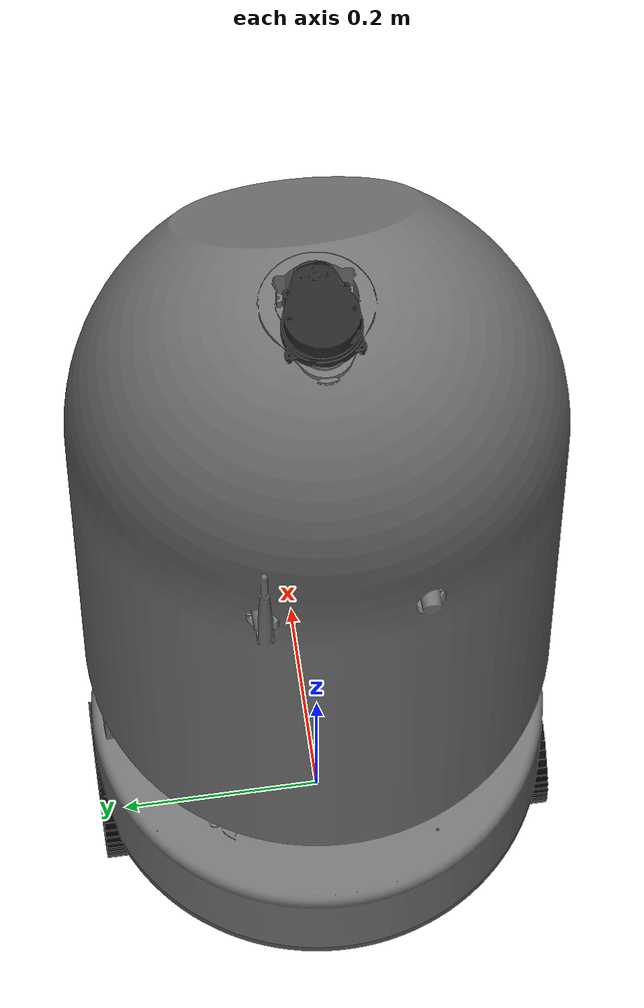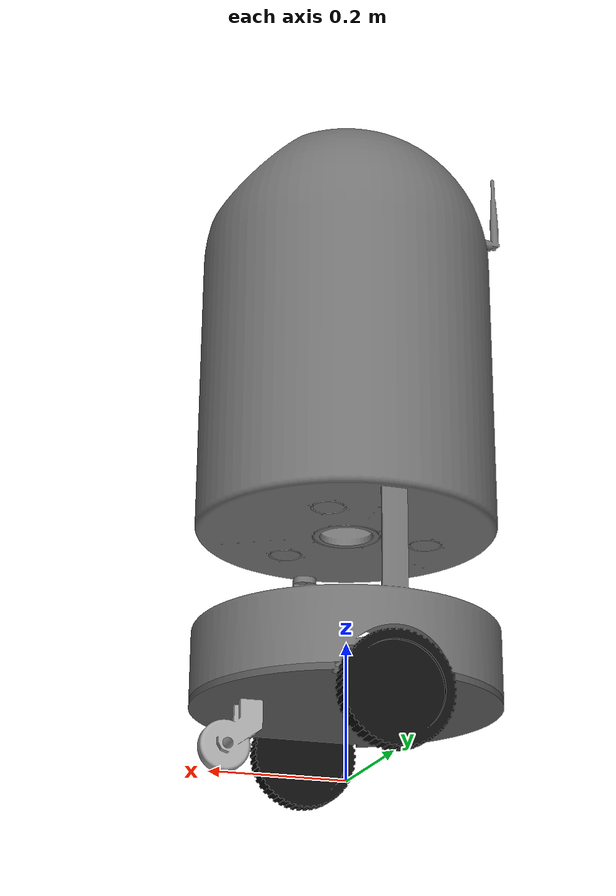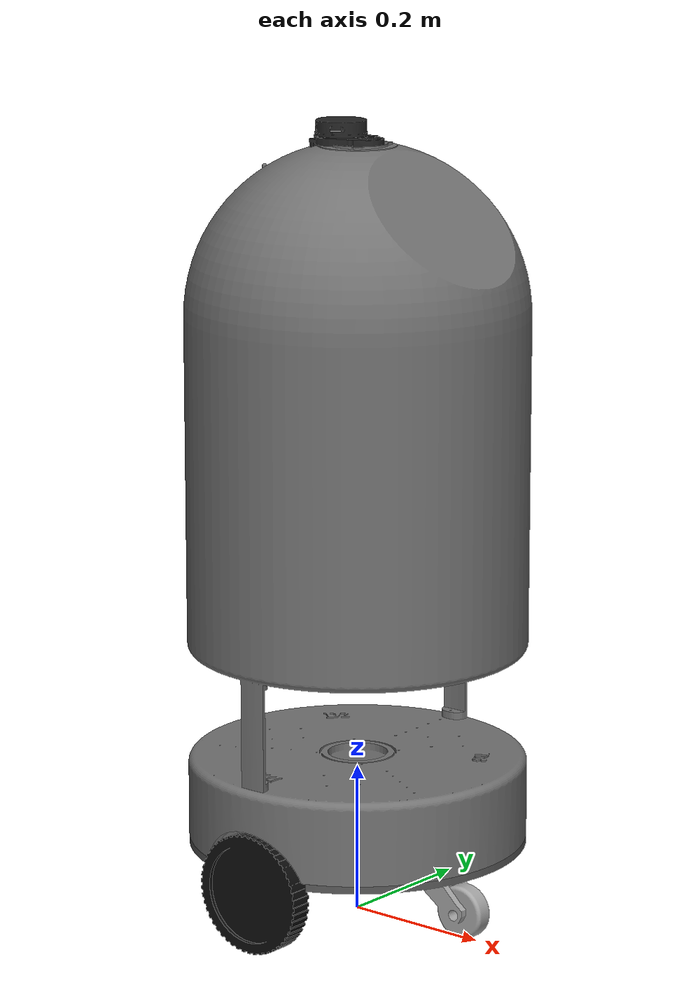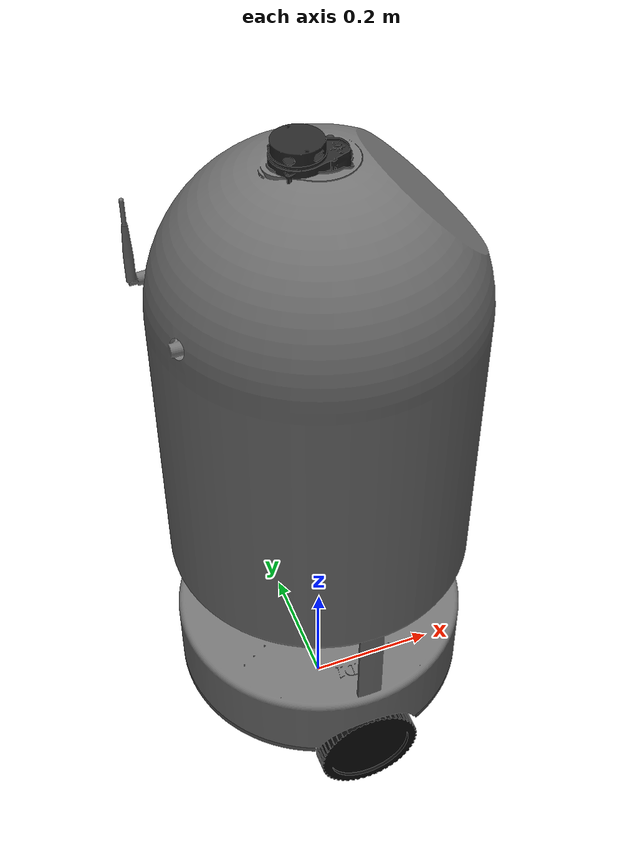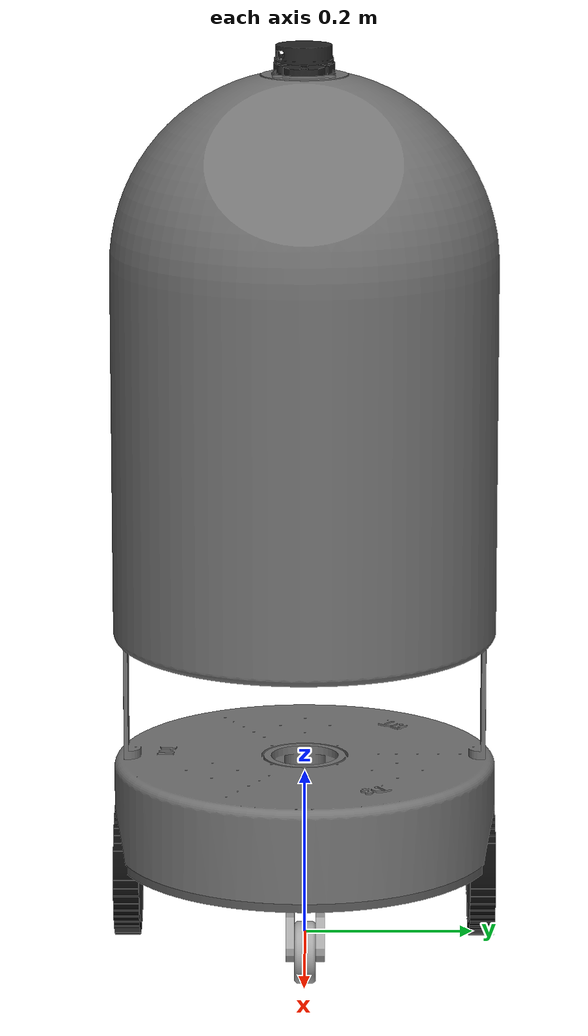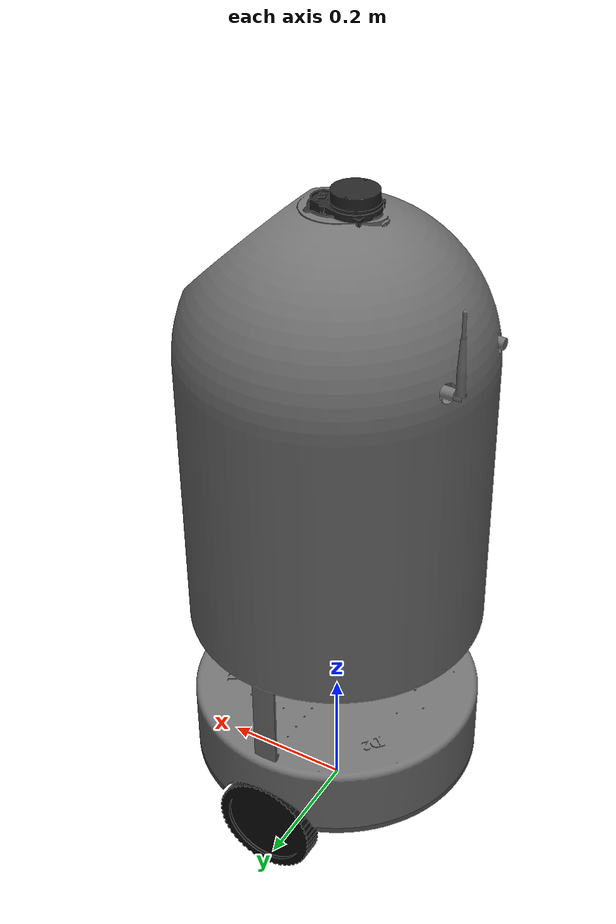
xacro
<?xml version="1.0"?>

<robot
    xmlns:xacro="http://www.ros.org/wiki/xacro"
    name="cdr_mobile_robot">

    <!-- PARÁMETROS GENERALES                              -->

    <!--
        Los STL fueron exportados en centímetros.
        ROS trabaja en metros.
    -->
    <xacro:property name="mesh_scale" value="0.01"/>

    <!-- BASE                                               -->

    <xacro:property name="base_length" value="0.44981234"/>
    <xacro:property name="base_width"  value="0.41688034"/>
    <xacro:property name="base_height" value="0.010"/>

    <!-- RUEDAS MOTRICES                                   -->

    <xacro:property name="wheel_radius" value="0.0798"/>
    <xacro:property name="wheel_width"  value="0.030"/>

    <!-- Altura física del eje respecto del suelo -->
    <xacro:property name="wheel_axle_height" value="0.08021222"/>

    <xacro:property
        name="left_wheel_y"
        value="0.20981216"/>

    <xacro:property
        name="right_wheel_y"
        value="-0.21018784"/>

    <xacro:property
        name="wheel_separation"
        value="0.420"/>

    <xacro:property
        name="wheel_x"
        value="0.0"/>

    <!-- BASE RESPECTO DEL EJE                             -->

    <xacro:property
        name="base_z_from_axle"
        value="0.02478778"/>

    <!-- CASTER                                             -->

    <xacro:property
        name="caster_x"
        value="0.17238133"/>

    <xacro:property
        name="caster_y"
        value="0.00110779"/>

    <xacro:property
        name="caster_z"
        value="-0.02986951"/>

    <!-- CUERPO / CARCASA                                  -->

    <xacro:property
        name="body_x"
        value="-0.00272912"/>

    <xacro:property
        name="body_y"
        value="0.0"/>

    <xacro:property
        name="body_z"
        value="0.49128779"/>

    <!-- Dimensiones aproximadas de la carcasa -->

    <xacro:property
        name="body_radius"
        value="0.227685"/>

    <xacro:property
        name="body_height"
        value="0.923"/>

    <!-- LIDAR                                              -->

    <xacro:property
        name="lidar_x"
        value="-0.01199760"/>

    <xacro:property
        name="lidar_y"
        value="-0.00058913"/>

    <xacro:property
        name="lidar_z"
        value="0.95123137"/>

    <!-- Bounding Box real del STL -->

    <xacro:property
        name="lidar_size_x"
        value="0.10162800"/>

    <xacro:property
        name="lidar_size_y"
        value="0.07117092"/>

    <xacro:property
        name="lidar_size_z"
        value="0.05838722"/>

    <!-- COLORES                                           -->

    <material name="base_gray">
        <color rgba="0.35 0.35 0.35 1.0"/>
    </material>

    <material name="body_gray">
        <color rgba="0.45 0.45 0.45 1.0"/>
    </material>

    <material name="wheel_black">
        <color rgba="0.05 0.05 0.05 1.0"/>
    </material>

    <material name="caster_gray">
        <color rgba="0.65 0.65 0.65 1.0"/>
    </material>

    <material name="lidar_gray">
        <color rgba="0.15 0.15 0.15 1.0"/>
    </material>

    <!-- BASE FOOTPRINT                                    -->

    <!--
        base_footprint está ubicado sobre el suelo
        directamente debajo del centro del eje.
    -->

    <link name="base_footprint"/>

    <!-- BASE LINK                                         -->

    <!--
        base_link está ubicado en:

            X = centro longitudinal del robot
            Y = centro transversal
            Z = eje de las ruedas
    -->

    <link name="base_link">

        <!-- VISUAL: BASE                                      -->

        <visual name="base_visual">

            <origin
                xyz="0 0 -0.08021222"
                rpy="0 0 ${pi/2}"/>

            <geometry>

                <mesh
                    filename="package://papa_description/meshes/Papa_Base.stl"
                    scale="${mesh_scale} ${mesh_scale} ${mesh_scale}"/>

            </geometry>

            <material name="base_gray"/>

        </visual>

        <!-- COLLISION: BASE                                   -->

        <collision name="base_collision">

            <origin
                xyz="0 0 ${base_z_from_axle}"
                rpy="0 0 0"/>

            <geometry>

                <box
                    size="${base_length} ${base_width} ${base_height}"/>

            </geometry>

        </collision>

        <!-- INERCIAL: BASE                                    -->

        <!--
            Valores todavía provisionales.

            Cuando tengamos la masa real y distribución
            final conviene recalcularlos.
        -->

        <inertial>

            <origin
                xyz="0 0 ${base_z_from_axle}"
                rpy="0 0 0"/>

            <mass value="5.0"/>

            <inertia
                ixx="0.0417"
                ixy="0.0"
                ixz="0.0"
                iyy="0.0708"
                iyz="0.0"
                izz="0.1042"/>

        </inertial>

    </link>

    <!-- BASE FOOTPRINT -> BASE LINK                       -->

    <joint
        name="base_footprint_joint"
        type="fixed">

        <parent link="base_footprint"/>
        <child link="base_link"/>

        <!--
            El eje de las ruedas está aproximadamente
            a un radio de rueda sobre el suelo.
        -->

        <origin
            xyz="0 0 ${wheel_radius}"
            rpy="0 0 0"/>

    </joint>

    <!-- CUERPO / CARCASA                                  -->

    <link name="body_link">

        <!-- VISUAL                                            -->

        <visual>

            <origin
                xyz="0.00272912 -0.50000000 -0.57150002"
                rpy="0 0 ${pi/2}"/>

            <geometry>

                <mesh
                    filename="package://papa_description/meshes/ROS_MODEL.stl"
                    scale="${mesh_scale} ${mesh_scale} ${mesh_scale}"/>

            </geometry>

            <material name="body_gray"/>

        </visual>

        <!-- COLLISION                                         -->

        <!--
            Aproximación cilíndrica de la carcasa.

            El modelo mide aproximadamente:
                45 cm de diámetro
                92.3 cm de alto.
        -->

        <collision>

            <origin xyz="0 0 0" rpy="0 0 0"/>

            <geometry>

                <cylinder
                    radius="${body_radius}"
                    length="${body_height}"/>

            </geometry>

        </collision>

    </link>

    <!-- BODY JOINT                                        -->

    <joint
        name="body_joint"
        type="fixed">

        <parent link="base_link"/>
        <child link="body_link"/>

        <origin
            xyz="${body_x} ${body_y} ${body_z}"
            rpy="0 0 0"/>

    </joint>

    <!-- RUEDA IZQUIERDA                                   -->

    <link name="left_wheel_link">

        <visual>

            <origin
                xyz="0 0.54018784 -0.08021222"
                rpy="0 0 ${pi/2}"/>

            <geometry>

                <mesh
                    filename="package://papa_description/meshes/Papa_RuedaGrande.stl"
                    scale="${mesh_scale} ${mesh_scale} ${mesh_scale}"/>

            </geometry>

            <material name="wheel_black"/>

        </visual>

        <collision>

            <!--
                El cilindro URDF tiene eje longitudinal Z.
                La rueda debe girar alrededor de Y.
            -->

            <origin
                xyz="0 0 0"
                rpy="${pi/2} 0 0"/>

            <geometry>

                <cylinder
                    radius="${wheel_radius}"
                    length="${wheel_width}"/>

            </geometry>

        </collision>

        <inertial>

            <origin xyz="0 0 0" rpy="0 0 0"/>

            <mass value="0.30"/>

            <inertia
                ixx="0.00037"
                ixy="0.0"
                ixz="0.0"
                iyy="0.00063"
                iyz="0.0"
                izz="0.00037"/>

        </inertial>

    </link>

    <joint
        name="left_wheel_joint"
        type="continuous">

        <parent link="base_link"/>
        <child link="left_wheel_link"/>

        <origin
            xyz="${wheel_x} ${left_wheel_y} 0"
            rpy="0 0 0"/>

        <axis xyz="0 1 0"/>

        <dynamics
            damping="0.0"
            friction="0.0"/>

    </joint>

    <!-- RUEDA DERECHA                                     -->

    <link name="right_wheel_link">

        <visual>

            <!--
                Se usa exactamente el mismo STL que para
                la rueda izquierda.

                Solamente cambia la posición del joint.
            -->

            <origin
                xyz="0 0.54018784 -0.08021222"
                rpy="0 0 ${pi/2}"/>

            <geometry>

                <mesh
                    filename="package://papa_description/meshes/Papa_RuedaGrande.stl"
                    scale="${mesh_scale} ${mesh_scale} ${mesh_scale}"/>

            </geometry>

            <material name="wheel_black"/>

        </visual>

        <collision>

            <origin
                xyz="0 0 0"
                rpy="${pi/2} 0 0"/>

            <geometry>

                <cylinder
                    radius="${wheel_radius}"
                    length="${wheel_width}"/>

            </geometry>

        </collision>

        <inertial>

            <origin xyz="0 0 0" rpy="0 0 0"/>

            <mass value="0.30"/>

            <inertia
                ixx="0.00037"
                ixy="0.0"
                ixz="0.0"
                iyy="0.00063"
                iyz="0.0"
                izz="0.00037"/>

        </inertial>

    </link>

    <joint
        name="right_wheel_joint"
        type="continuous">

        <parent link="base_link"/>
        <child link="right_wheel_link"/>

        <origin
            xyz="${wheel_x} ${right_wheel_y} 0"
            rpy="0 0 0"/>

        <axis xyz="0 1 0"/>

        <dynamics
            damping="0.0"
            friction="0.0"/>

    </joint>

    <!-- CASTER                                             -->

    <link name="caster_link">

        <visual>

            <origin
                xyz="-0.17238133 0.74889221 -0.05034271"
                rpy="0 0 ${pi/2}"/>

            <geometry>

                <mesh
                    filename="package://papa_description/meshes/Papa_RuedaChica.stl"
                    scale="${mesh_scale} ${mesh_scale} ${mesh_scale}"/>

            </geometry>

            <material name="caster_gray"/>

        </visual>

        <!-- Aproximación para colisión -->

        <collision>

            <origin
                xyz="0 0 0"
                rpy="0 0 0"/>

            <geometry>

                <sphere radius="0.045"/>

            </geometry>

        </collision>

        <inertial>

            <origin xyz="0 0 0" rpy="0 0 0"/>

            <mass value="0.10"/>

            <inertia
                ixx="0.000025"
                ixy="0.0"
                ixz="0.0"
                iyy="0.000025"
                iyz="0.0"
                izz="0.000025"/>

        </inertial>

    </link>

    <!-- CASTER JOINT                                      -->

    <joint
        name="caster_joint"
        type="fixed">

        <parent link="base_link"/>
        <child link="caster_link"/>

        <origin
            xyz="${caster_x} ${caster_y} ${caster_z}"
            rpy="0 0 0"/>

    </joint>

    <!-- YDLIDAR X4                                        -->

    <link name="lidar_link">

        <!-- VISUAL                                            -->

        <visual>

            <origin
                xyz="0.01199760 0.00058913 -1.01144360"
                rpy="0 0 ${pi/2}"/>

            <geometry>

                <mesh
                    filename="package://papa_description/meshes/Lidar_ROS_MODEL.stl"
                    scale="${mesh_scale} ${mesh_scale} ${mesh_scale}"/>

            </geometry>

            <material name="lidar_gray"/>

        </visual>

        <!-- COLLISION                                         -->

        <!--
            Bounding box aproximado después de adaptar
            los ejes CAD -> ROS.
        -->

        <collision>

            <origin
                xyz="0 0 0"
                rpy="0 0 0"/>

            <geometry>

                <box
                    size="${lidar_size_x}
                          ${lidar_size_y}
                          ${lidar_size_z}"/>

            </geometry>

        </collision>

    </link>

    <!-- LIDAR JOINT                                       -->

    <joint
        name="lidar_joint"
        type="fixed">

        <parent link="base_link"/>
        <child link="lidar_link"/>

        <origin
            xyz="${lidar_x} ${lidar_y} ${lidar_z}"
            rpy="0 0 ${pi}"/>

    </joint>

</robot>
